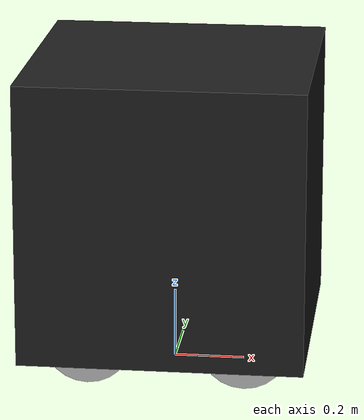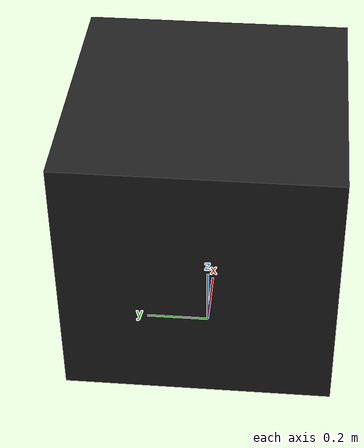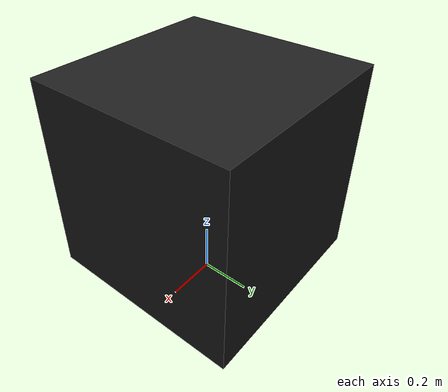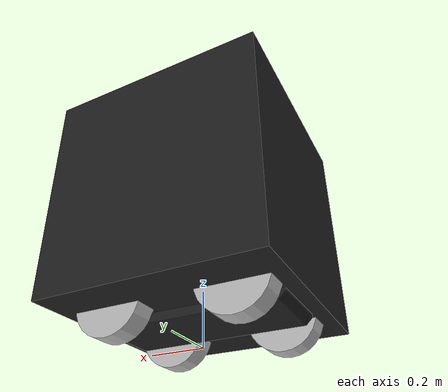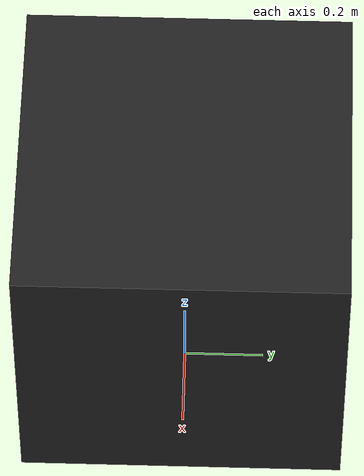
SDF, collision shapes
<sdf version='1.6'>
  <model name='summit_xl'>
    <link name='summit_xl_base_footprint'>
      <pose frame=''>0 0 0 0 -0 0</pose>
      <inertial>
        <pose frame=''>0.001614 -5.7e-05 0.128062 0 -0 0</pose>
        <mass>125.566</mass>
        <inertia>
          <ixx>1.42636</ixx>
          <ixy>0.00653222</ixy>
          <ixz>-0.0475425</ixz>
          <iyy>6.95718</iyy>
          <iyz>0.00168084</iyz>
          <izz>6.20139</izz>
        </inertia>
      </inertial>
      <collision name='summit_xl_base_footprint_fixed_joint_lump__summit_xl_collision_box_collision'>
        <pose frame=''>0 0 0.5 0 -0 0</pose>
        <geometry>
          <box>
            <size>0.8 0.8 0.8</size>
          </box>
        </geometry>
      </collision>
      <collision name='summit_xl_base_footprint_fixed_joint_lump__summit_xl_base_link_collision_1'>
        <pose frame=''>0 0 0.127 0 -0 0</pose>
        <geometry>
          <mesh>
            <scale>1 1 1</scale>
            <uri>model://summit_xl_description/meshes/bases/xls/summit_xls_chassis.dae</uri>
          </mesh>
        </geometry>
        <surface>
          <contact>
            <ode/>
          </contact>
          <friction>
            <ode/>
          </friction>
        </surface>
      </collision>
      <collision name='summit_xl_base_footprint_fixed_joint_lump__summit_xl_front_rgbd_camera_link_collision_2'>
        <pose frame=''>0.3585 -0.0125 0.36262 0 -0 0</pose>
        <geometry>
          <mesh>
            <scale>1 1 1</scale>
            <uri>model://robotnik_sensors/meshes/orbbec_astra.dae</uri>
          </mesh>
        </geometry>
      </collision>
      <visual name='summit_xl_base_footprint_visual'>
        <pose frame=''>0 0 0 0 -0 0</pose>
        <geometry>
          <box>
            <size>0.001 0.001 0.001</size>
          </box>
        </geometry>
      </visual>
      <visual name='summit_xl_base_footprint_fixed_joint_lump__summit_xl_base_link_visual_1'>
        <pose frame=''>0 0 0.127 0 -0 0</pose>
        <geometry>
          <mesh>
            <scale>1 1 1</scale>
            <uri>model://summit_xl_description/meshes/bases/xls/summit_xls_chassis.stl</uri>
          </mesh>
        </geometry>
        <material>
          <script>
            <name>Gazebo/Black</name>
            <uri>file://media/materials/scripts/gazebo.material</uri>
          </script>
        </material>
      </visual>
      <visual name='summit_xl_base_footprint_fixed_joint_lump__summit_xl_base_logo_front_visual_2'>
        <pose frame=''>0.345 0 0.127 0 0 -1.5708</pose>
        <geometry>
          <mesh>
            <scale>1 1 1</scale>
            <uri>model://summit_xl_description/meshes/bases/xls/robotnik_logo_chasis.stl</uri>
          </mesh>
        </geometry>
      </visual>
      <visual name='summit_xl_base_footprint_fixed_joint_lump__summit_xl_base_logo_left_visual_3'>
        <pose frame=''>0 0.28931 0.41762 0 -0 0</pose>
        <geometry>
          <mesh>
            <scale>1 1 1</scale>
            <uri>model://summit_xl_description/meshes/bases/xls/robotnik_logo_chasis.stl</uri>
          </mesh>
        </geometry>
      </visual>
      <visual name='summit_xl_base_footprint_fixed_joint_lump__summit_xl_base_logo_rear_visual_4'>
        <pose frame=''>-0.345 0 0.127 0 -0 1.5708</pose>
        <geometry>
          <mesh>
            <scale>1 1 1</scale>
            <uri>model://summit_xl_description/meshes/bases/xls/robotnik_logo_chasis.stl</uri>
          </mesh>
        </geometry>
      </visual>
      <visual name='summit_xl_base_footprint_fixed_joint_lump__summit_xl_base_logo_right_visual_5'>
        <pose frame=''>0 -0.28931 0.41762 0 -0 -3.14159</pose>
        <geometry>
          <mesh>
            <scale>1 1 1</scale>
            <uri>model://summit_xl_description/meshes/bases/xls/robotnik_logo_chasis.stl</uri>
          </mesh>
        </geometry>
      </visual>
      <visual name='summit_xl_base_footprint_fixed_joint_lump__summit_xl_base_chapa_visual_6'>
        <pose frame=''>0 0 0.50762 0 -0 0</pose>
        <geometry>
          <mesh>
            <scale>1 1 1</scale>
            <uri>model://summit_xl_description/meshes/bases/xls/summit_xls_chapas_inox_tapas.stl</uri>
          </mesh>
        </geometry>
      </visual>
      <visual name='summit_xl_base_footprint_fixed_joint_lump__summit_xl_front_rgbd_camera_link_visual_7'>
        <pose frame=''>0.3585 -0.0125 0.36262 0 -0 0</pose>
        <geometry>
          <mesh>
            <scale>1 1 1</scale>
            <uri>model://robotnik_sensors/meshes/orbbec_astra.dae</uri>
          </mesh>
        </geometry>
      </visual>
      <visual name='summit_xl_base_footprint_fixed_joint_lump__summit_xl_imu_link_visual_8'>
        <pose frame=''>0.127 -0.129 0.339 0 -0 0</pose>
        <geometry>
          <box>
            <size>0.001 0.001 0.001</size>
          </box>
        </geometry>
        <material>
          <script>
            <uri>__default__</uri>
            <name>__default__</name>
          </script>
        </material>
      </visual>
      <velocity_decay/>
      <velocity_decay/>
      <sensor name='body_contact' type='contact'>
        <contact>
          <collision>robot::robot_base_footprint::robot_base_footprint_fixed_joint_lump__robot_collision_box_collision</collision>
          <topic>__default_topic__</topic>
        </contact>
        <plugin name='body_plugin' filename='libgazebo_ros_bumper.so'>
          <alwaysOn>1</alwaysOn>
          <bumperTopicName>body_contact</bumperTopicName>
          <frameName>summit_xl_base_footprint</frameName>
        </plugin>
        <pose frame=''>0 0 0.127 0 -0 0</pose>
      </sensor>
      <velocity_decay/>
      <sensor name='summit_xl_front_rgbd_camera_depth_sensor' type='depth'>
        <always_on>1</always_on>
        <update_rate>20</update_rate>
        <camera name='__default__'>
          <horizontal_fov>1.0472</horizontal_fov>
          <image>
            <format>R8G8B8</format>
            <width>640</width>
            <height>480</height>
          </image>
          <clip>
            <near>0.05</near>
            <far>3.5</far>
          </clip>
        </camera>
        <plugin name='summit_xl_front_rgbd_camera_controller' filename='libgazebo_ros_openni_kinect.so'>
          <cameraName>front_rgbd_camera</cameraName>
          <alwaysOn>1</alwaysOn>
          <updateRate>10</updateRate>
          <imageTopicName>rgb/image_raw</imageTopicName>
          <depthImageTopicName>depth/image_raw</depthImageTopicName>
          <pointCloudTopicName>depth/points</pointCloudTopicName>
          <cameraInfoTopicName>rgb/camera_info</cameraInfoTopicName>
          <depthImageCameraInfoTopicName>depth/camera_info</depthImageCameraInfoTopicName>
          <frameName>/summit_xl_front_rgbd_camera_depth_optical_frame</frameName>
          <baseline>0.1</baseline>
          <distortion_k1>0.0</distortion_k1>
          <distortion_k2>0.0</distortion_k2>
          <distortion_k3>0.0</distortion_k3>
          <distortion_t1>0.0</distortion_t1>
          <distortion_t2>0.0</distortion_t2>
          <pointCloudCutoff>0.4</pointCloudCutoff>
        </plugin>
        <pose frame=''>0.3585 0 0.37762 0 -0 0</pose>
      </sensor>
      <gravity>1</gravity>
      <velocity_decay/>
      <gravity>1</gravity>
      <sensor name='summit_xl_imu_imu_sensor' type='imu'>
        <always_on>1</always_on>
        <update_rate>100</update_rate>
        <visualize>1</visualize>
        <topic>__default_topic__</topic>
        <plugin name='summit_xl_imu_imu_plugin' filename='libgazebo_ros_imu_sensor.so'>
          <topicName>imu/data</topicName>
          <bodyName>summit_xl_imu_link</bodyName>
          <updateRateHZ>100.0</updateRateHZ>
          <gaussianNoise>0.0</gaussianNoise>
          <xyzOffset>0 0 0</xyzOffset>
          <rpyOffset>0 0 0</rpyOffset>
          <frameName>summit_xl_imu_link</frameName>
        </plugin>
        <pose frame=''>0.127 -0.129 0.339 0 -0 0</pose>
      </sensor>
    </link>
    <link name='summit_xl_back_left_wheel_link'>
      <pose frame=''>-0.2225 0.2045 0.127 0 -0 0</pose>
      <inertial>
        <pose frame=''>0 0 0 0 -0 0</pose>
        <mass>6.5</mass>
        <inertia>
          <ixx>0.0303095</ixx>
          <ixy>0</ixy>
          <ixz>0</ixz>
          <iyy>0.0524193</iyy>
          <iyz>0</iyz>
          <izz>0.0303095</izz>
        </inertia>
      </inertial>
      <collision name='summit_xl_back_left_wheel_link_collision'>
        <pose frame=''>0 0 0 1.5708 -0 0</pose>
        <geometry>
          <cylinder>
            <length>0.087</length>
            <radius>0.127</radius>
          </cylinder>
        </geometry>
        <surface>
          <contact>
            <ode>
              <kp>1e+07</kp>
              <kd>1</kd>
            </ode>
          </contact>
          <friction>
            <ode>
              <mu>0</mu>
              <mu2>0</mu2>
              <fdir1>1 0 0</fdir1>
            </ode>
          </friction>
        </surface>
      </collision>
      <visual name='summit_xl_back_left_wheel_link_visual'>
        <pose frame=''>0 0 0 0 -0 0</pose>
        <geometry>
          <mesh>
            <scale>1 1 1</scale>
            <uri>model://summit_xl_description/meshes/wheels/omni_wheel_1.dae</uri>
          </mesh>
        </geometry>
        <material>
          <script>
            <uri>__default__</uri>
            <name>__default__</name>
          </script>
        </material>
      </visual>
      <gravity>1</gravity>
      <velocity_decay/>
    </link>
    <joint name='summit_xl_back_left_wheel_joint' type='revolute'>
      <child>summit_xl_back_left_wheel_link</child>
      <parent>summit_xl_base_footprint</parent>
      <axis>
        <xyz>0 1 0</xyz>
        <limit>
          <lower>-1e+16</lower>
          <upper>1e+16</upper>
        </limit>
        <dynamics>
          <spring_reference>0</spring_reference>
          <spring_stiffness>0</spring_stiffness>
        </dynamics>
        <use_parent_model_frame>1</use_parent_model_frame>
      </axis>
    </joint>
    <link name='summit_xl_back_right_wheel_link'>
      <pose frame=''>-0.2225 -0.2045 0.127 0 -0 0</pose>
      <inertial>
        <pose frame=''>0 0 0 0 -0 0</pose>
        <mass>6.5</mass>
        <inertia>
          <ixx>0.0303095</ixx>
          <ixy>0</ixy>
          <ixz>0</ixz>
          <iyy>0.0524193</iyy>
          <iyz>0</iyz>
          <izz>0.0303095</izz>
        </inertia>
      </inertial>
      <collision name='summit_xl_back_right_wheel_link_collision'>
        <pose frame=''>0 0 0 1.5708 -0 0</pose>
        <geometry>
          <cylinder>
            <length>0.087</length>
            <radius>0.127</radius>
          </cylinder>
        </geometry>
        <surface>
          <contact>
            <ode>
              <kp>1e+07</kp>
              <kd>1</kd>
            </ode>
          </contact>
          <friction>
            <ode>
              <mu>0</mu>
              <mu2>0</mu2>
              <fdir1>1 0 0</fdir1>
            </ode>
          </friction>
        </surface>
      </collision>
      <visual name='summit_xl_back_right_wheel_link_visual'>
        <pose frame=''>0 0 0 0 -0 0</pose>
        <geometry>
          <mesh>
            <scale>1 1 1</scale>
            <uri>model://summit_xl_description/meshes/wheels/omni_wheel_2.dae</uri>
          </mesh>
        </geometry>
        <material>
          <script>
            <uri>__default__</uri>
            <name>__default__</name>
          </script>
        </material>
      </visual>
      <gravity>1</gravity>
      <velocity_decay/>
    </link>
    <joint name='summit_xl_back_right_wheel_joint' type='revolute'>
      <child>summit_xl_back_right_wheel_link</child>
      <parent>summit_xl_base_footprint</parent>
      <axis>
        <xyz>0 1 0</xyz>
        <limit>
          <lower>-1e+16</lower>
          <upper>1e+16</upper>
        </limit>
        <dynamics>
          <spring_reference>0</spring_reference>
          <spring_stiffness>0</spring_stiffness>
        </dynamics>
        <use_parent_model_frame>1</use_parent_model_frame>
      </axis>
    </joint>
    <link name='summit_xl_front_laser_base_link'>
      <pose frame=''>0.2865 -0.20894 0.4243 3.14159 0 -0.785398</pose>
      <inertial>
        <pose frame=''>0 0 0 0 -0 0</pose>
        <mass>0.1</mass>
        <inertia>
          <ixx>0.000270833</ixx>
          <ixy>0</ixy>
          <ixz>0</ixz>
          <iyy>0.000270833</iyy>
          <iyz>0</iyz>
          <izz>9.434e-05</izz>
        </inertia>
      </inertial>
      <collision name='summit_xl_front_laser_base_link_collision'>
        <pose frame=''>0 0 0 0 -0 0</pose>
        <geometry>
          <mesh>
            <scale>1 1 1</scale>
            <uri>model://robotnik_sensors/meshes/sick_s300.dae</uri>
          </mesh>
        </geometry>
      </collision>
      <visual name='summit_xl_front_laser_base_link_visual'>
        <pose frame=''>0 0 0 0 -0 0</pose>
        <geometry>
          <mesh>
            <scale>1 1 1</scale>
            <uri>model://robotnik_sensors/meshes/sick_s300.dae</uri>
          </mesh>
        </geometry>
      </visual>
      <gravity>1</gravity>
      <velocity_decay/>
      <sensor name='summit_xl_front_laser_sensor' type='ray'>
        <visualize>0</visualize>
        <update_rate>12.5</update_rate>
        <ray>
          <scan>
            <horizontal>
              <samples>541</samples>
              <resolution>1</resolution>
              <min_angle>-2.3562</min_angle>
              <max_angle>2.3562</max_angle>
            </horizontal>
          </scan>
          <range>
            <min>0.1</min>
            <max>30</max>
            <resolution>0.03</resolution>
          </range>
          <noise>
            <type>gaussian</type>
            <mean>0</mean>
            <stddev>0.03</stddev>
          </noise>
        </ray>
        <plugin name='summit_xl_front_laser_controller' filename='libgazebo_ros_laser.so'>
          <topicName>front_laser/scan</topicName>
          <frameName>/summit_xl_front_laser_link</frameName>
        </plugin>
        <pose frame=''>0 0 0.116 0 -0 0</pose>
      </sensor>
    </link>
    <joint name='summit_xl_front_laser_base_joint' type='revolute'>
      <child>summit_xl_front_laser_base_link</child>
      <parent>summit_xl_base_footprint</parent>
      <axis>
        <xyz>0.707107 -0.707107 -0</xyz>
        <limit>
          <lower>0</lower>
          <upper>0</upper>
          <effort>100</effort>
          <velocity>100</velocity>
        </limit>
        <dynamics>
          <spring_reference>0</spring_reference>
          <spring_stiffness>0</spring_stiffness>
        </dynamics>
        <use_parent_model_frame>1</use_parent_model_frame>
      </axis>
    </joint>
    <link name='summit_xl_front_left_wheel_link'>
      <pose frame=''>0.2225 0.2045 0.127 0 -0 0</pose>
      <inertial>
        <pose frame=''>0 0 0 0 -0 0</pose>
        <mass>6.5</mass>
        <inertia>
          <ixx>0.0303095</ixx>
          <ixy>0</ixy>
          <ixz>0</ixz>
          <iyy>0.0524193</iyy>
          <iyz>0</iyz>
          <izz>0.0303095</izz>
        </inertia>
      </inertial>
      <collision name='summit_xl_front_left_wheel_link_collision'>
        <pose frame=''>0 0 0 1.5708 -0 0</pose>
        <geometry>
          <cylinder>
            <length>0.087</length>
            <radius>0.127</radius>
          </cylinder>
        </geometry>
        <surface>
          <contact>
            <ode>
              <kp>1e+07</kp>
              <kd>1</kd>
            </ode>
          </contact>
          <friction>
            <ode>
              <mu>0</mu>
              <mu2>0</mu2>
              <fdir1>1 0 0</fdir1>
            </ode>
          </friction>
        </surface>
      </collision>
      <visual name='summit_xl_front_left_wheel_link_visual'>
        <pose frame=''>0 0 0 0 -0 0</pose>
        <geometry>
          <mesh>
            <scale>1 1 1</scale>
            <uri>model://summit_xl_description/meshes/wheels/omni_wheel_1.dae</uri>
          </mesh>
        </geometry>
        <material>
          <script>
            <uri>__default__</uri>
            <name>__default__</name>
          </script>
        </material>
      </visual>
      <gravity>1</gravity>
      <velocity_decay/>
    </link>
    <joint name='summit_xl_front_left_wheel_joint' type='revolute'>
      <child>summit_xl_front_left_wheel_link</child>
      <parent>summit_xl_base_footprint</parent>
      <axis>
        <xyz>0 1 0</xyz>
        <limit>
          <lower>-1e+16</lower>
          <upper>1e+16</upper>
        </limit>
        <dynamics>
          <spring_reference>0</spring_reference>
          <spring_stiffness>0</spring_stiffness>
        </dynamics>
        <use_parent_model_frame>1</use_parent_model_frame>
      </axis>
    </joint>
    <link name='summit_xl_front_right_wheel_link'>
      <pose frame=''>0.2225 -0.2045 0.127 0 -0 0</pose>
      <inertial>
        <pose frame=''>0 0 0 0 -0 0</pose>
        <mass>6.5</mass>
        <inertia>
          <ixx>0.0303095</ixx>
          <ixy>0</ixy>
          <ixz>0</ixz>
          <iyy>0.0524193</iyy>
          <iyz>0</iyz>
          <izz>0.0303095</izz>
        </inertia>
      </inertial>
      <collision name='summit_xl_front_right_wheel_link_collision'>
        <pose frame=''>0 0 0 1.5708 -0 0</pose>
        <geometry>
          <cylinder>
            <length>0.087</length>
            <radius>0.127</radius>
          </cylinder>
        </geometry>
        <surface>
          <contact>
            <ode>
              <kp>1e+07</kp>
              <kd>1</kd>
            </ode>
          </contact>
          <friction>
            <ode>
              <mu>0</mu>
              <mu2>0</mu2>
              <fdir1>1 0 0</fdir1>
            </ode>
          </friction>
        </surface>
      </collision>
      <visual name='summit_xl_front_right_wheel_link_visual'>
        <pose frame=''>0 0 0 0 -0 0</pose>
        <geometry>
          <mesh>
            <scale>1 1 1</scale>
            <uri>model://summit_xl_description/meshes/wheels/omni_wheel_2.dae</uri>
          </mesh>
        </geometry>
        <material>
          <script>
            <uri>__default__</uri>
            <name>__default__</name>
          </script>
        </material>
      </visual>
      <gravity>1</gravity>
      <velocity_decay/>
    </link>
    <joint name='summit_xl_front_right_wheel_joint' type='revolute'>
      <child>summit_xl_front_right_wheel_link</child>
      <parent>summit_xl_base_footprint</parent>
      <axis>
        <xyz>0 1 0</xyz>
        <limit>
          <lower>-1e+16</lower>
          <upper>1e+16</upper>
        </limit>
        <dynamics>
          <spring_reference>0</spring_reference>
          <spring_stiffness>0</spring_stiffness>
        </dynamics>
        <use_parent_model_frame>1</use_parent_model_frame>
      </axis>
    </joint>
    <link name='summit_xl_rear_laser_base_link'>
      <pose frame=''>-0.2865 0.20894 0.4243 3.14159 0 2.35619</pose>
      <inertial>
        <pose frame=''>0 0 0 0 -0 0</pose>
        <mass>0.1</mass>
        <inertia>
          <ixx>0.000270833</ixx>
          <ixy>0</ixy>
          <ixz>0</ixz>
          <iyy>0.000270833</iyy>
          <iyz>0</iyz>
          <izz>9.434e-05</izz>
        </inertia>
      </inertial>
      <collision name='summit_xl_rear_laser_base_link_collision'>
        <pose frame=''>0 0 0 0 -0 0</pose>
        <geometry>
          <mesh>
            <scale>1 1 1</scale>
            <uri>model://robotnik_sensors/meshes/sick_s300.dae</uri>
          </mesh>
        </geometry>
      </collision>
      <visual name='summit_xl_rear_laser_base_link_visual'>
        <pose frame=''>0 0 0 0 -0 0</pose>
        <geometry>
          <mesh>
            <scale>1 1 1</scale>
            <uri>model://robotnik_sensors/meshes/sick_s300.dae</uri>
          </mesh>
        </geometry>
      </visual>
      <gravity>1</gravity>
      <velocity_decay/>
      <sensor name='summit_xl_rear_laser_sensor' type='ray'>
        <visualize>0</visualize>
        <update_rate>12.5</update_rate>
        <ray>
          <scan>
            <horizontal>
              <samples>541</samples>
              <resolution>1</resolution>
              <min_angle>-2.3562</min_angle>
              <max_angle>2.3562</max_angle>
            </horizontal>
          </scan>
          <range>
            <min>0.1</min>
            <max>30</max>
            <resolution>0.03</resolution>
          </range>
          <noise>
            <type>gaussian</type>
            <mean>0</mean>
            <stddev>0.03</stddev>
          </noise>
        </ray>
        <plugin name='summit_xl_rear_laser_controller' filename='libgazebo_ros_laser.so'>
          <topicName>rear_laser/scan</topicName>
          <frameName>/summit_xl_rear_laser_link</frameName>
        </plugin>
        <pose frame=''>0 0 0.116 0 -0 0</pose>
      </sensor>
    </link>
    <joint name='summit_xl_rear_laser_base_joint' type='revolute'>
      <child>summit_xl_rear_laser_base_link</child>
      <parent>summit_xl_base_footprint</parent>
      <axis>
        <xyz>-0.707107 0.707107 -0</xyz>
        <limit>
          <lower>0</lower>
          <upper>0</upper>
          <effort>100</effort>
          <velocity>100</velocity>
        </limit>
        <dynamics>
          <spring_reference>0</spring_reference>
          <spring_stiffness>0</spring_stiffness>
        </dynamics>
        <use_parent_model_frame>1</use_parent_model_frame>
      </axis>
    </joint>
    <static>0</static>
    <plugin name='ros_control' filename='libgazebo_ros_control.so'>
      <robotParam>robot_description</robotParam>
      <controlPeriod>0.001</controlPeriod>
      <robotSimType>gazebo_ros_control/DefaultRobotHWSim</robotSimType>
      <legacyModeNS>1</legacyModeNS>
    </plugin>
  </model>
</sdf>
